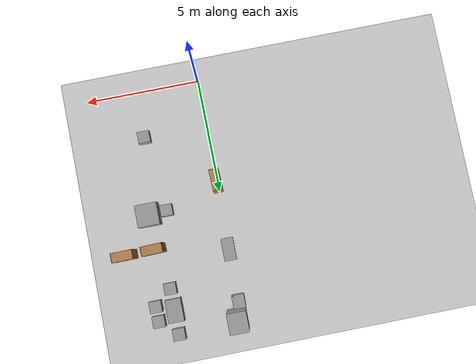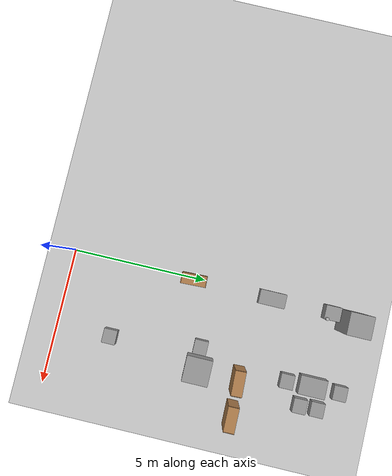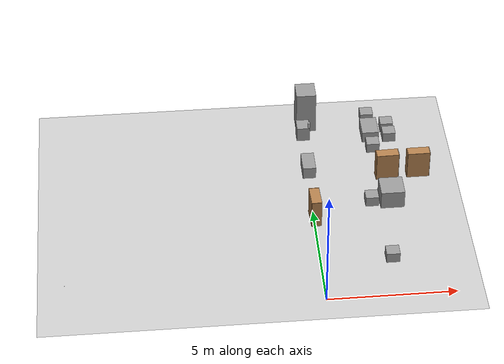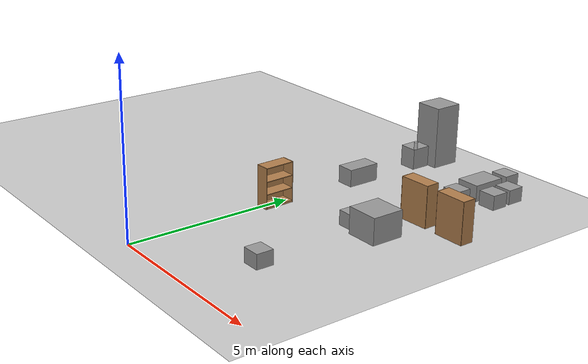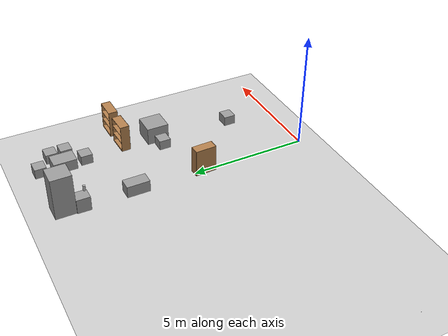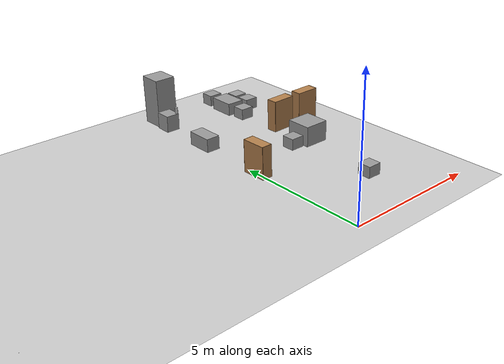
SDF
<sdf version="1.7">
 <world name="default">
  <model name="ground_plane">
   <static>1</static>
   <link name="link">
    <collision name="collision">
     <geometry><plane><normal>0 0 1</normal><size>100 100</size></plane></geometry>
     <surface>
      <contact><collide_bitmask>65535</collide_bitmask></contact>
      <friction><ode><mu>100</mu><mu2>50</mu2></ode></friction>
     </surface>
    </collision>
    <visual name="visual">
     <cast_shadows>0</cast_shadows>
     <geometry><plane><normal>0 0 1</normal><size>100 100</size></plane></geometry>
     <material>
      <script><uri>file://media/materials/scripts/gazebo.material</uri><name>Gazebo/Grey</name></script>
     </material>
    </visual>
   </link>
  </model>
  <model name="bookshelf">
   <static>1</static>
   <link name="link">
    <inertial><mass>1</mass></inertial>
    <collision name="back">
     <pose>0 0.005 0.6 0 -0 0</pose>
     <geometry><box><size>0.9 0.01 1.2</size></box></geometry>
    </collision>
    <visual name="visual1">
     <pose>0 0.005 0.6 0 -0 0</pose>
     <geometry><box><size>0.9 0.01 1.2</size></box></geometry>
     <material>
      <script><uri>file://media/materials/scripts/gazebo.material</uri><name>Gazebo/Wood</name></script>
     </material>
    </visual>
    <collision name="left_side">
     <pose>0.45 -0.195 0.6 0 -0 0</pose>
     <geometry><box><size>0.02 0.4 1.2</size></box></geometry>
    </collision>
    <visual name="visual2">
     <pose>0.45 -0.195 0.6 0 -0 0</pose>
     <geometry><box><size>0.02 0.4 1.2</size></box></geometry>
     <material>
      <script><uri>file://media/materials/scripts/gazebo.material</uri><name>Gazebo/Wood</name></script>
     </material>
    </visual>
    <collision name="right_side">
     <pose>-0.45 -0.195 0.6 0 -0 0</pose>
     <geometry><box><size>0.02 0.4 1.2</size></box></geometry>
    </collision>
    <visual name="visual3">
     <pose>-0.45 -0.195 0.6 0 -0 0</pose>
     <geometry><box><size>0.02 0.4 1.2</size></box></geometry>
     <material>
      <script><uri>file://media/materials/scripts/gazebo.material</uri><name>Gazebo/Wood</name></script>
     </material>
    </visual>
    <collision name="bottom">
     <pose>0 -0.195 0.03 0 -0 0</pose>
     <geometry><box><size>0.88 0.4 0.06</size></box></geometry>
    </collision>
    <visual name="visual4">
     <pose>0 -0.195 0.03 0 -0 0</pose>
     <geometry><box><size>0.88 0.4 0.06</size></box></geometry>
     <material>
      <script><uri>file://media/materials/scripts/gazebo.material</uri><name>Gazebo/Wood</name></script>
     </material>
    </visual>
    <collision name="top">
     <pose>0 -0.195 1.19 0 -0 0</pose>
     <geometry><box><size>0.88 0.4 0.02</size></box></geometry>
    </collision>
    <visual name="visual5">
     <pose>0 -0.195 1.19 0 -0 0</pose>
     <geometry><box><size>0.88 0.4 0.02</size></box></geometry>
     <material>
      <script><uri>file://media/materials/scripts/gazebo.material</uri><name>Gazebo/Wood</name></script>
     </material>
    </visual>
    <collision name="low_shelf">
     <pose>0 -0.195 0.43 0 -0 0</pose>
     <geometry><box><size>0.88 0.4 0.02</size></box></geometry>
    </collision>
    <visual name="visual6">
     <pose>0 -0.195 0.43 0 -0 0</pose>
     <geometry><box><size>0.88 0.4 0.02</size></box></geometry>
     <material>
      <script><uri>file://media/materials/scripts/gazebo.material</uri><name>Gazebo/Wood</name></script>
     </material>
    </visual>
    <collision name="high_shelf">
     <pose>0 -0.195 0.8 0 -0 0</pose>
     <geometry><box><size>0.88 0.4 0.02</size></box></geometry>
    </collision>
    <visual name="visual7">
     <pose>0 -0.195 0.8 0 -0 0</pose>
     <geometry><box><size>0.88 0.4 0.02</size></box></geometry>
     <material>
      <script><uri>file://media/materials/scripts/gazebo.material</uri><name>Gazebo/Wood</name></script>
     </material>
    </visual>
   </link>
   <pose>-0.149519 4.58526 0.003354 0 -0 1.60289</pose>
  </model>
  <model name="bookshelf_clone">
   <static>1</static>
   <link name="link">
    <inertial><mass>1</mass></inertial>
    <collision name="back">
     <pose>0 0.005 0.6 0 -0 0</pose>
     <geometry><box><size>0.9 0.01 1.2</size></box></geometry>
    </collision>
    <visual name="visual1">
     <pose>0 0.005 0.6 0 -0 0</pose>
     <geometry><box><size>0.9 0.01 1.2</size></box></geometry>
     <material>
      <script><uri>file://media/materials/scripts/gazebo.material</uri><name>Gazebo/Wood</name></script>
     </material>
    </visual>
    <collision name="left_side">
     <pose>0.45 -0.195 0.6 0 -0 0</pose>
     <geometry><box><size>0.02 0.4 1.2</size></box></geometry>
    </collision>
    <visual name="visual2">
     <pose>0.45 -0.195 0.6 0 -0 0</pose>
     <geometry><box><size>0.02 0.4 1.2</size></box></geometry>
     <material>
      <script><uri>file://media/materials/scripts/gazebo.material</uri><name>Gazebo/Wood</name></script>
     </material>
    </visual>
    <collision name="right_side">
     <pose>-0.45 -0.195 0.6 0 -0 0</pose>
     <geometry><box><size>0.02 0.4 1.2</size></box></geometry>
    </collision>
    <visual name="visual3">
     <pose>-0.45 -0.195 0.6 0 -0 0</pose>
     <geometry><box><size>0.02 0.4 1.2</size></box></geometry>
     <material>
      <script><uri>file://media/materials/scripts/gazebo.material</uri><name>Gazebo/Wood</name></script>
     </material>
    </visual>
    <collision name="bottom">
     <pose>0 -0.195 0.03 0 -0 0</pose>
     <geometry><box><size>0.88 0.4 0.06</size></box></geometry>
    </collision>
    <visual name="visual4">
     <pose>0 -0.195 0.03 0 -0 0</pose>
     <geometry><box><size>0.88 0.4 0.06</size></box></geometry>
     <material>
      <script><uri>file://media/materials/scripts/gazebo.material</uri><name>Gazebo/Wood</name></script>
     </material>
    </visual>
    <collision name="top">
     <pose>0 -0.195 1.19 0 -0 0</pose>
     <geometry><box><size>0.88 0.4 0.02</size></box></geometry>
    </collision>
    <visual name="visual5">
     <pose>0 -0.195 1.19 0 -0 0</pose>
     <geometry><box><size>0.88 0.4 0.02</size></box></geometry>
     <material>
      <script><uri>file://media/materials/scripts/gazebo.material</uri><name>Gazebo/Wood</name></script>
     </material>
    </visual>
    <collision name="low_shelf">
     <pose>0 -0.195 0.43 0 -0 0</pose>
     <geometry><box><size>0.88 0.4 0.02</size></box></geometry>
    </collision>
    <visual name="visual6">
     <pose>0 -0.195 0.43 0 -0 0</pose>
     <geometry><box><size>0.88 0.4 0.02</size></box></geometry>
     <material>
      <script><uri>file://media/materials/scripts/gazebo.material</uri><name>Gazebo/Wood</name></script>
     </material>
    </visual>
    <collision name="high_shelf">
     <pose>0 -0.195 0.8 0 -0 0</pose>
     <geometry><box><size>0.88 0.4 0.02</size></box></geometry>
    </collision>
    <visual name="visual7">
     <pose>0 -0.195 0.8 0 -0 0</pose>
     <geometry><box><size>0.88 0.4 0.02</size></box></geometry>
     <material>
      <script><uri>file://media/materials/scripts/gazebo.material</uri><name>Gazebo/Wood</name></script>
     </material>
    </visual>
   </link>
   <pose>3.21772 6.7548 0.007597 0 0 -3.10805</pose>
  </model>
  <model name="bookshelf_clone_0">
   <static>1</static>
   <link name="link">
    <inertial><mass>1</mass></inertial>
    <collision name="back">
     <pose>0 0.005 0.6 0 -0 0</pose>
     <geometry><box><size>0.9 0.01 1.2</size></box></geometry>
    </collision>
    <visual name="visual1">
     <pose>0 0.005 0.6 0 -0 0</pose>
     <geometry><box><size>0.9 0.01 1.2</size></box></geometry>
     <material>
      <script><uri>file://media/materials/scripts/gazebo.material</uri><name>Gazebo/Wood</name></script>
     </material>
    </visual>
    <collision name="left_side">
     <pose>0.45 -0.195 0.6 0 -0 0</pose>
     <geometry><box><size>0.02 0.4 1.2</size></box></geometry>
    </collision>
    <visual name="visual2">
     <pose>0.45 -0.195 0.6 0 -0 0</pose>
     <geometry><box><size>0.02 0.4 1.2</size></box></geometry>
     <material>
      <script><uri>file://media/materials/scripts/gazebo.material</uri><name>Gazebo/Wood</name></script>
     </material>
    </visual>
    <collision name="right_side">
     <pose>-0.45 -0.195 0.6 0 -0 0</pose>
     <geometry><box><size>0.02 0.4 1.2</size></box></geometry>
    </collision>
    <visual name="visual3">
     <pose>-0.45 -0.195 0.6 0 -0 0</pose>
     <geometry><box><size>0.02 0.4 1.2</size></box></geometry>
     <material>
      <script><uri>file://media/materials/scripts/gazebo.material</uri><name>Gazebo/Wood</name></script>
     </material>
    </visual>
    <collision name="bottom">
     <pose>0 -0.195 0.03 0 -0 0</pose>
     <geometry><box><size>0.88 0.4 0.06</size></box></geometry>
    </collision>
    <visual name="visual4">
     <pose>0 -0.195 0.03 0 -0 0</pose>
     <geometry><box><size>0.88 0.4 0.06</size></box></geometry>
     <material>
      <script><uri>file://media/materials/scripts/gazebo.material</uri><name>Gazebo/Wood</name></script>
     </material>
    </visual>
    <collision name="top">
     <pose>0 -0.195 1.19 0 -0 0</pose>
     <geometry><box><size>0.88 0.4 0.02</size></box></geometry>
    </collision>
    <visual name="visual5">
     <pose>0 -0.195 1.19 0 -0 0</pose>
     <geometry><box><size>0.88 0.4 0.02</size></box></geometry>
     <material>
      <script><uri>file://media/materials/scripts/gazebo.material</uri><name>Gazebo/Wood</name></script>
     </material>
    </visual>
    <collision name="low_shelf">
     <pose>0 -0.195 0.43 0 -0 0</pose>
     <geometry><box><size>0.88 0.4 0.02</size></box></geometry>
    </collision>
    <visual name="visual6">
     <pose>0 -0.195 0.43 0 -0 0</pose>
     <geometry><box><size>0.88 0.4 0.02</size></box></geometry>
     <material>
      <script><uri>file://media/materials/scripts/gazebo.material</uri><name>Gazebo/Wood</name></script>
     </material>
    </visual>
    <collision name="high_shelf">
     <pose>0 -0.195 0.8 0 -0 0</pose>
     <geometry><box><size>0.88 0.4 0.02</size></box></geometry>
    </collision>
    <visual name="visual7">
     <pose>0 -0.195 0.8 0 -0 0</pose>
     <geometry><box><size>0.88 0.4 0.02</size></box></geometry>
     <material>
      <script><uri>file://media/materials/scripts/gazebo.material</uri><name>Gazebo/Wood</name></script>
     </material>
    </visual>
   </link>
   <pose>4.47579 6.78864 -0.002803 -0.005198 -0.000171 -3.13529</pose>
  </model>
  <model name="unit_box_clone_0">
   <link name="link">
    <inertial>
     <mass>1</mass>
     <inertia>
      <ixx>0.166667</ixx>
      <ixy>0</ixy>
      <ixz>0</ixz>
      <iyy>0.166667</iyy>
      <iyz>0</iyz>
      <izz>0.166667</izz>
     </inertia>
    </inertial>
    <visual name="visual">
     <geometry><box><size>0.525272 0.502179 0.423961</size></box></geometry>
     <material>
      <script><name>Gazebo/Grey</name><uri>file://media/materials/scripts/gazebo.material</uri></script>
      <shader type="pixel"><normal_map>__default__</normal_map></shader>
      <ambient>0.933 0.933 0.925 1</ambient>
      <diffuse>0.7 0.7 0.7 1</diffuse>
      <specular>0.01 0.01 0.01 1</specular>
      <emissive>0 0 0 1</emissive>
     </material>
    </visual>
    <collision name="collision">
     <geometry><box><size>0.525272 0.502179 0.423961</size></box></geometry>
     <surface>
      <friction>
       <ode><mu>1</mu><mu2>1</mu2><fdir1>0 0 0</fdir1><slip1>0</slip1><slip2>0</slip2></ode>
       <torsional>
        <coefficient>1</coefficient>
        <patch_radius>0</patch_radius>
        <surface_radius>0</surface_radius>
        <use_patch_radius>1</use_patch_radius>
        <ode><slip>0</slip></ode>
       </torsional>
      </friction>
      <bounce><restitution_coefficient>0</restitution_coefficient><threshold>1e+06</threshold></bounce>
      <contact>
       <collide_without_contact>0</collide_without_contact>
       <collide_without_contact_bitmask>1</collide_without_contact_bitmask>
       <collide_bitmask>1</collide_bitmask>
       <ode>
        <soft_cfm>0</soft_cfm>
        <soft_erp>0.2</soft_erp>
        <kp>1e+13</kp>
        <kd>1</kd>
        <max_vel>0.01</max_vel>
        <min_depth>0</min_depth>
       </ode>
       <bullet>
        <split_impulse>1</split_impulse>
        <split_impulse_penetration_threshold>-0.01</split_impulse_penetration_threshold>
        <soft_cfm>0</soft_cfm>
        <soft_erp>0.2</soft_erp>
        <kp>1e+13</kp>
        <kd>1</kd>
       </bullet>
      </contact>
     </surface>
    </collision>
   </link>
   <static>0</static>
   <pose>2.77764 2.06187 0.21198 0 0 -2.3e-05</pose>
  </model>
  <model name="unit_box_clone_clone">
   <link name="link">
    <inertial>
     <mass>1</mass>
     <inertia>
      <ixx>0.166667</ixx>
      <ixy>0</ixy>
      <ixz>0</ixz>
      <iyy>0.166667</iyy>
      <iyz>0</iyz>
      <izz>0.166667</izz>
     </inertia>
    </inertial>
    <visual name="visual">
     <geometry><box><size>0.808451 0.858287 1.84502</size></box></geometry>
     <material>
      <script><name>Gazebo/Grey</name><uri>file://media/materials/scripts/gazebo.material</uri></script>
      <shader type="pixel"><normal_map>__default__</normal_map></shader>
      <ambient>0.933 0.933 0.925 1</ambient>
      <diffuse>0.7 0.7 0.7 1</diffuse>
      <specular>0.01 0.01 0.01 1</specular>
      <emissive>0 0 0 1</emissive>
     </material>
    </visual>
    <collision name="collision">
     <geometry><box><size>0.808451 0.858287 1.84502</size></box></geometry>
     <surface>
      <friction>
       <ode><mu>1</mu><mu2>1</mu2><fdir1>0 0 0</fdir1><slip1>0</slip1><slip2>0</slip2></ode>
       <torsional>
        <coefficient>1</coefficient>
        <patch_radius>0</patch_radius>
        <surface_radius>0</surface_radius>
        <use_patch_radius>1</use_patch_radius>
        <ode><slip>0</slip></ode>
       </torsional>
      </friction>
      <bounce><restitution_coefficient>0</restitution_coefficient><threshold>1e+06</threshold></bounce>
      <contact>
       <collide_without_contact>0</collide_without_contact>
       <collide_without_contact_bitmask>1</collide_without_contact_bitmask>
       <collide_bitmask>1</collide_bitmask>
       <ode>
        <soft_cfm>0</soft_cfm>
        <soft_erp>0.2</soft_erp>
        <kp>1e+13</kp>
        <kd>1</kd>
        <max_vel>0.01</max_vel>
        <min_depth>0</min_depth>
       </ode>
       <bullet>
        <split_impulse>1</split_impulse>
        <split_impulse_penetration_threshold>-0.01</split_impulse_penetration_threshold>
        <soft_cfm>0</soft_cfm>
        <soft_erp>0.2</soft_erp>
        <kp>1e+13</kp>
        <kd>1</kd>
       </bullet>
      </contact>
     </surface>
    </collision>
   </link>
   <static>0</static>
   <pose>0.248065 10.5246 0.92251 0 0 -0.001486</pose>
  </model>
  <model name="unit_box_clone_clone_0">
   <link name="link">
    <inertial>
     <mass>1</mass>
     <inertia>
      <ixx>0.166667</ixx>
      <ixy>0</ixy>
      <ixz>0</ixz>
      <iyy>0.166667</iyy>
      <iyz>0</iyz>
      <izz>0.166667</izz>
     </inertia>
    </inertial>
    <visual name="visual">
     <geometry><box><size>0.525272 0.583453 0.630859</size></box></geometry>
     <material>
      <script><name>Gazebo/Grey</name><uri>file://media/materials/scripts/gazebo.material</uri></script>
      <shader type="pixel"><normal_map>__default__</normal_map></shader>
      <ambient>0.933 0.933 0.925 1</ambient>
      <diffuse>0.7 0.7 0.7 1</diffuse>
      <specular>0.01 0.01 0.01 1</specular>
      <emissive>0 0 0 1</emissive>
     </material>
    </visual>
    <collision name="collision">
     <geometry><box><size>0.525272 0.583453 0.630859</size></box></geometry>
     <surface>
      <friction>
       <ode><mu>1</mu><mu2>1</mu2><fdir1>0 0 0</fdir1><slip1>0</slip1><slip2>0</slip2></ode>
       <torsional>
        <coefficient>1</coefficient>
        <patch_radius>0</patch_radius>
        <surface_radius>0</surface_radius>
        <use_patch_radius>1</use_patch_radius>
        <ode><slip>0</slip></ode>
       </torsional>
      </friction>
      <bounce><restitution_coefficient>0</restitution_coefficient><threshold>1e+06</threshold></bounce>
      <contact>
       <collide_without_contact>0</collide_without_contact>
       <collide_without_contact_bitmask>1</collide_without_contact_bitmask>
       <collide_bitmask>1</collide_bitmask>
       <ode>
        <soft_cfm>0</soft_cfm>
        <soft_erp>0.2</soft_erp>
        <kp>1e+13</kp>
        <kd>1</kd>
        <max_vel>0.01</max_vel>
        <min_depth>0</min_depth>
       </ode>
       <bullet>
        <split_impulse>1</split_impulse>
        <split_impulse_penetration_threshold>-0.01</split_impulse_penetration_threshold>
        <soft_cfm>0</soft_cfm>
        <soft_erp>0.2</soft_erp>
        <kp>1e+13</kp>
        <kd>1</kd>
       </bullet>
      </contact>
     </surface>
    </collision>
   </link>
   <static>0</static>
   <pose>0.078842 9.80259 0.296536 0.011877 0.013252 -0.000358</pose>
  </model>
  <model name="unit_box_clone_clone_1">
   <link name="link">
    <inertial>
     <mass>1</mass>
     <inertia>
      <ixx>0.166667</ixx>
      <ixy>0</ixy>
      <ixz>0</ixz>
      <iyy>0.166667</iyy>
      <iyz>0</iyz>
      <izz>0.166667</izz>
     </inertia>
    </inertial>
    <visual name="visual">
     <geometry><box><size>0.525272 0.97954 0.509969</size></box></geometry>
     <material>
      <script><name>Gazebo/Grey</name><uri>file://media/materials/scripts/gazebo.material</uri></script>
      <shader type="pixel"><normal_map>__default__</normal_map></shader>
      <ambient>0.933 0.933 0.925 1</ambient>
      <diffuse>0.7 0.7 0.7 1</diffuse>
      <specular>0.01 0.01 0.01 1</specular>
      <emissive>0 0 0 1</emissive>
     </material>
    </visual>
    <collision name="collision">
     <geometry><box><size>0.525272 0.97954 0.509969</size></box></geometry>
     <surface>
      <friction>
       <ode><mu>1</mu><mu2>1</mu2><fdir1>0 0 0</fdir1><slip1>0</slip1><slip2>0</slip2></ode>
       <torsional>
        <coefficient>1</coefficient>
        <patch_radius>0</patch_radius>
        <surface_radius>0</surface_radius>
        <use_patch_radius>1</use_patch_radius>
        <ode><slip>0</slip></ode>
       </torsional>
      </friction>
      <bounce><restitution_coefficient>0</restitution_coefficient><threshold>1e+06</threshold></bounce>
      <contact>
       <collide_without_contact>0</collide_without_contact>
       <collide_without_contact_bitmask>1</collide_without_contact_bitmask>
       <collide_bitmask>1</collide_bitmask>
       <ode>
        <soft_cfm>0</soft_cfm>
        <soft_erp>0.2</soft_erp>
        <kp>1e+13</kp>
        <kd>1</kd>
        <max_vel>0.01</max_vel>
        <min_depth>0</min_depth>
       </ode>
       <bullet>
        <split_impulse>1</split_impulse>
        <split_impulse_penetration_threshold>-0.01</split_impulse_penetration_threshold>
        <soft_cfm>0</soft_cfm>
        <soft_erp>0.2</soft_erp>
        <kp>1e+13</kp>
        <kd>1</kd>
       </bullet>
      </contact>
     </surface>
    </collision>
   </link>
   <static>0</static>
   <pose>0.078868 7.55518 0.254985 -4e-06 1e-06 -3e-06</pose>
  </model>
  <model name="unit_box_clone_clone_8">
   <link name="link">
    <inertial>
     <mass>1</mass>
     <inertia>
      <ixx>0.166667</ixx>
      <ixy>0</ixy>
      <ixz>0</ixz>
      <iyy>0.166667</iyy>
      <iyz>0</iyz>
      <izz>0.166667</izz>
     </inertia>
    </inertial>
    <visual name="visual">
     <geometry><box><size>0.525272 0.502179 0.423961</size></box></geometry>
     <material>
      <script><name>Gazebo/Grey</name><uri>file://media/materials/scripts/gazebo.material</uri></script>
      <shader type="pixel"><normal_map>__default__</normal_map></shader>
      <ambient>0.933 0.933 0.925 1</ambient>
      <diffuse>0.7 0.7 0.7 1</diffuse>
      <specular>0.01 0.01 0.01 1</specular>
      <emissive>0 0 0 1</emissive>
     </material>
    </visual>
    <collision name="collision">
     <geometry><box><size>0.525272 0.502179 0.423961</size></box></geometry>
     <surface>
      <friction>
       <ode><mu>1</mu><mu2>1</mu2><fdir1>0 0 0</fdir1><slip1>0</slip1><slip2>0</slip2></ode>
       <torsional>
        <coefficient>1</coefficient>
        <patch_radius>0</patch_radius>
        <surface_radius>0</surface_radius>
        <use_patch_radius>1</use_patch_radius>
        <ode><slip>0</slip></ode>
       </torsional>
      </friction>
      <bounce><restitution_coefficient>0</restitution_coefficient><threshold>1e+06</threshold></bounce>
      <contact>
       <collide_without_contact>0</collide_without_contact>
       <collide_without_contact_bitmask>1</collide_without_contact_bitmask>
       <collide_bitmask>1</collide_bitmask>
       <ode>
        <soft_cfm>0</soft_cfm>
        <soft_erp>0.2</soft_erp>
        <kp>1e+13</kp>
        <kd>1</kd>
        <max_vel>0.01</max_vel>
        <min_depth>0</min_depth>
       </ode>
       <bullet>
        <split_impulse>1</split_impulse>
        <split_impulse_penetration_threshold>-0.01</split_impulse_penetration_threshold>
        <soft_cfm>0</soft_cfm>
        <soft_erp>0.2</soft_erp>
        <kp>1e+13</kp>
        <kd>1</kd>
       </bullet>
      </contact>
     </surface>
    </collision>
   </link>
   <static>0</static>
   <pose>2.39961 5.38819 0.21198 0 0 -6e-06</pose>
  </model>
  <model name="unit_box_clone_clone_1_clone">
   <link name="link">
    <inertial>
     <mass>1</mass>
     <inertia>
      <ixx>0.166667</ixx>
      <ixy>0</ixy>
      <ixz>0</ixz>
      <iyy>0.166667</iyy>
      <iyz>0</iyz>
      <izz>0.166667</izz>
     </inertia>
    </inertial>
    <visual name="visual">
     <geometry><box><size>0.682472 0.993503 0.47723</size></box></geometry>
     <material>
      <script><name>Gazebo/Grey</name><uri>file://media/materials/scripts/gazebo.material</uri></script>
      <shader type="pixel"><normal_map>__default__</normal_map></shader>
      <ambient>0.933 0.933 0.925 1</ambient>
      <diffuse>0.7 0.7 0.7 1</diffuse>
      <specular>0.01 0.01 0.01 1</specular>
      <emissive>0 0 0 1</emissive>
     </material>
    </visual>
    <collision name="collision">
     <geometry><box><size>0.682472 0.993503 0.47723</size></box></geometry>
     <surface>
      <friction>
       <ode><mu>1</mu><mu2>1</mu2><fdir1>0 0 0</fdir1><slip1>0</slip1><slip2>0</slip2></ode>
       <torsional>
        <coefficient>1</coefficient>
        <patch_radius>0</patch_radius>
        <surface_radius>0</surface_radius>
        <use_patch_radius>1</use_patch_radius>
        <ode><slip>0</slip></ode>
       </torsional>
      </friction>
      <bounce><restitution_coefficient>0</restitution_coefficient><threshold>1e+06</threshold></bounce>
      <contact>
       <collide_without_contact>0</collide_without_contact>
       <collide_without_contact_bitmask>1</collide_without_contact_bitmask>
       <collide_bitmask>1</collide_bitmask>
       <ode>
        <soft_cfm>0</soft_cfm>
        <soft_erp>0.2</soft_erp>
        <kp>1e+13</kp>
        <kd>1</kd>
        <max_vel>0.01</max_vel>
        <min_depth>0</min_depth>
       </ode>
       <bullet>
        <split_impulse>1</split_impulse>
        <split_impulse_penetration_threshold>-0.01</split_impulse_penetration_threshold>
        <soft_cfm>0</soft_cfm>
        <soft_erp>0.2</soft_erp>
        <kp>1e+13</kp>
        <kd>1</kd>
       </bullet>
      </contact>
     </surface>
    </collision>
   </link>
   <static>0</static>
   <pose>2.83779 9.67014 0.238615 0 -0 1.8e-05</pose>
  </model>
  <model name="unit_box_clone_clone_5">
   <link name="link">
    <inertial>
     <mass>1</mass>
     <inertia>
      <ixx>0.166667</ixx>
      <ixy>0</ixy>
      <ixz>0</ixz>
      <iyy>0.166667</iyy>
      <iyz>0</iyz>
      <izz>0.166667</izz>
     </inertia>
    </inertial>
    <visual name="visual">
     <geometry><box><size>0.525272 0.502179 0.423961</size></box></geometry>
     <material>
      <script><name>Gazebo/Grey</name><uri>file://media/materials/scripts/gazebo.material</uri></script>
      <shader type="pixel"><normal_map>__default__</normal_map></shader>
      <ambient>0.933 0.933 0.925 1</ambient>
      <diffuse>0.7 0.7 0.7 1</diffuse>
      <specular>0.01 0.01 0.01 1</specular>
      <emissive>0 0 0 1</emissive>
     </material>
    </visual>
    <collision name="collision">
     <geometry><box><size>0.525272 0.502179 0.423961</size></box></geometry>
     <surface>
      <friction>
       <ode><mu>1</mu><mu2>1</mu2><fdir1>0 0 0</fdir1><slip1>0</slip1><slip2>0</slip2></ode>
       <torsional>
        <coefficient>1</coefficient>
        <patch_radius>0</patch_radius>
        <surface_radius>0</surface_radius>
        <use_patch_radius>1</use_patch_radius>
        <ode><slip>0</slip></ode>
       </torsional>
      </friction>
      <bounce><restitution_coefficient>0</restitution_coefficient><threshold>1e+06</threshold></bounce>
      <contact>
       <collide_without_contact>0</collide_without_contact>
       <collide_without_contact_bitmask>1</collide_without_contact_bitmask>
       <collide_bitmask>1</collide_bitmask>
       <ode>
        <soft_cfm>0</soft_cfm>
        <soft_erp>0.2</soft_erp>
        <kp>1e+13</kp>
        <kd>1</kd>
        <max_vel>0.01</max_vel>
        <min_depth>0</min_depth>
       </ode>
       <bullet>
        <split_impulse>1</split_impulse>
        <split_impulse_penetration_threshold>-0.01</split_impulse_penetration_threshold>
        <soft_cfm>0</soft_cfm>
        <soft_erp>0.2</soft_erp>
        <kp>1e+13</kp>
        <kd>1</kd>
       </bullet>
      </contact>
     </surface>
    </collision>
   </link>
   <static>0</static>
   <pose>2.84093 10.6917 0.21198 0 0 -6e-06</pose>
  </model>
  <model name="unit_box_clone_clone_9">
   <link name="link">
    <inertial>
     <mass>1</mass>
     <inertia>
      <ixx>0.166667</ixx>
      <ixy>0</ixy>
      <ixz>0</ixz>
      <iyy>0.166667</iyy>
      <iyz>0</iyz>
      <izz>0.166667</izz>
     </inertia>
    </inertial>
    <visual name="visual">
     <geometry><box><size>0.525272 0.502179 0.423961</size></box></geometry>
     <material>
      <script><name>Gazebo/Grey</name><uri>file://media/materials/scripts/gazebo.material</uri></script>
      <shader type="pixel"><normal_map>__default__</normal_map></shader>
      <ambient>0.933 0.933 0.925 1</ambient>
      <diffuse>0.7 0.7 0.7 1</diffuse>
      <specular>0.01 0.01 0.01 1</specular>
      <emissive>0 0 0 1</emissive>
     </material>
    </visual>
    <collision name="collision">
     <geometry><box><size>0.525272 0.502179 0.423961</size></box></geometry>
     <surface>
      <friction>
       <ode><mu>1</mu><mu2>1</mu2><fdir1>0 0 0</fdir1><slip1>0</slip1><slip2>0</slip2></ode>
       <torsional>
        <coefficient>1</coefficient>
        <patch_radius>0</patch_radius>
        <surface_radius>0</surface_radius>
        <use_patch_radius>1</use_patch_radius>
        <ode><slip>0</slip></ode>
       </torsional>
      </friction>
      <bounce><restitution_coefficient>0</restitution_coefficient><threshold>1e+06</threshold></bounce>
      <contact>
       <collide_without_contact>0</collide_without_contact>
       <collide_without_contact_bitmask>1</collide_without_contact_bitmask>
       <collide_bitmask>1</collide_bitmask>
       <ode>
        <soft_cfm>0</soft_cfm>
        <soft_erp>0.2</soft_erp>
        <kp>1e+13</kp>
        <kd>1</kd>
        <max_vel>0.01</max_vel>
        <min_depth>0</min_depth>
       </ode>
       <bullet>
        <split_impulse>1</split_impulse>
        <split_impulse_penetration_threshold>-0.01</split_impulse_penetration_threshold>
        <soft_cfm>0</soft_cfm>
        <soft_erp>0.2</soft_erp>
        <kp>1e+13</kp>
        <kd>1</kd>
       </bullet>
      </contact>
     </surface>
    </collision>
   </link>
   <static>0</static>
   <pose>3.5915 10.0055 0.21198 0 0 -6e-06</pose>
  </model>
  <model name="unit_box_clone_clone_10">
   <link name="link">
    <inertial>
     <mass>1</mass>
     <inertia>
      <ixx>0.166667</ixx>
      <ixy>0</ixy>
      <ixz>0</ixz>
      <iyy>0.166667</iyy>
      <iyz>0</iyz>
      <izz>0.166667</izz>
     </inertia>
    </inertial>
    <visual name="visual">
     <geometry><box><size>0.525272 0.502179 0.423961</size></box></geometry>
     <material>
      <script><name>Gazebo/Grey</name><uri>file://media/materials/scripts/gazebo.material</uri></script>
      <shader type="pixel"><normal_map>__default__</normal_map></shader>
      <ambient>0.933 0.933 0.925 1</ambient>
      <diffuse>0.7 0.7 0.7 1</diffuse>
      <specular>0.01 0.01 0.01 1</specular>
      <emissive>0 0 0 1</emissive>
     </material>
    </visual>
    <collision name="collision">
     <geometry><box><size>0.525272 0.502179 0.423961</size></box></geometry>
     <surface>
      <friction>
       <ode><mu>1</mu><mu2>1</mu2><fdir1>0 0 0</fdir1><slip1>0</slip1><slip2>0</slip2></ode>
       <torsional>
        <coefficient>1</coefficient>
        <patch_radius>0</patch_radius>
        <surface_radius>0</surface_radius>
        <use_patch_radius>1</use_patch_radius>
        <ode><slip>0</slip></ode>
       </torsional>
      </friction>
      <bounce><restitution_coefficient>0</restitution_coefficient><threshold>1e+06</threshold></bounce>
      <contact>
       <collide_without_contact>0</collide_without_contact>
       <collide_without_contact_bitmask>1</collide_without_contact_bitmask>
       <collide_bitmask>1</collide_bitmask>
       <ode>
        <soft_cfm>0</soft_cfm>
        <soft_erp>0.2</soft_erp>
        <kp>1e+13</kp>
        <kd>1</kd>
        <max_vel>0.01</max_vel>
        <min_depth>0</min_depth>
       </ode>
       <bullet>
        <split_impulse>1</split_impulse>
        <split_impulse_penetration_threshold>-0.01</split_impulse_penetration_threshold>
        <soft_cfm>0</soft_cfm>
        <soft_erp>0.2</soft_erp>
        <kp>1e+13</kp>
        <kd>1</kd>
       </bullet>
      </contact>
     </surface>
    </collision>
   </link>
   <static>0</static>
   <pose>3.61034 9.36526 0.21198 0 0 -6e-06</pose>
  </model>
  <model name="unit_box_clone_clone_11">
   <link name="link">
    <inertial>
     <mass>1</mass>
     <inertia>
      <ixx>0.166667</ixx>
      <ixy>0</ixy>
      <ixz>0</ixz>
      <iyy>0.166667</iyy>
      <iyz>0</iyz>
      <izz>0.166667</izz>
     </inertia>
    </inertial>
    <visual name="visual">
     <geometry><box><size>0.525272 0.502179 0.423961</size></box></geometry>
     <material>
      <script><name>Gazebo/Grey</name><uri>file://media/materials/scripts/gazebo.material</uri></script>
      <shader type="pixel"><normal_map>__default__</normal_map></shader>
      <ambient>0.933 0.933 0.925 1</ambient>
      <diffuse>0.7 0.7 0.7 1</diffuse>
      <specular>0.01 0.01 0.01 1</specular>
      <emissive>0 0 0 1</emissive>
     </material>
    </visual>
    <collision name="collision">
     <geometry><box><size>0.525272 0.502179 0.423961</size></box></geometry>
     <surface>
      <friction>
       <ode><mu>1</mu><mu2>1</mu2><fdir1>0 0 0</fdir1><slip1>0</slip1><slip2>0</slip2></ode>
       <torsional>
        <coefficient>1</coefficient>
        <patch_radius>0</patch_radius>
        <surface_radius>0</surface_radius>
        <use_patch_radius>1</use_patch_radius>
        <ode><slip>0</slip></ode>
       </torsional>
      </friction>
      <bounce><restitution_coefficient>0</restitution_coefficient><threshold>1e+06</threshold></bounce>
      <contact>
       <collide_without_contact>0</collide_without_contact>
       <collide_without_contact_bitmask>1</collide_without_contact_bitmask>
       <collide_bitmask>1</collide_bitmask>
       <ode>
        <soft_cfm>0</soft_cfm>
        <soft_erp>0.2</soft_erp>
        <kp>1e+13</kp>
        <kd>1</kd>
        <max_vel>0.01</max_vel>
        <min_depth>0</min_depth>
       </ode>
       <bullet>
        <split_impulse>1</split_impulse>
        <split_impulse_penetration_threshold>-0.01</split_impulse_penetration_threshold>
        <soft_cfm>0</soft_cfm>
        <soft_erp>0.2</soft_erp>
        <kp>1e+13</kp>
        <kd>1</kd>
       </bullet>
      </contact>
     </surface>
    </collision>
   </link>
   <static>0</static>
   <pose>2.86041 8.7265 0.21198 0 0 -6e-06</pose>
  </model>
  <model name="unit_box_clone_clone_8_clone">
   <link name="link">
    <inertial>
     <mass>1</mass>
     <inertia>
      <ixx>0.166667</ixx>
      <ixy>0</ixy>
      <ixz>0</ixz>
      <iyy>0.166667</iyy>
      <iyz>0</iyz>
      <izz>0.166667</izz>
     </inertia>
    </inertial>
    <visual name="visual">
     <geometry><box><size>0.943966 0.957675 0.766369</size></box></geometry>
     <material>
      <script><name>Gazebo/Grey</name><uri>file://media/materials/scripts/gazebo.material</uri></script>
      <shader type="pixel"><normal_map>__default__</normal_map></shader>
      <ambient>0.933 0.933 0.925 1</ambient>
      <diffuse>0.7 0.7 0.7 1</diffuse>
      <specular>0.01 0.01 0.01 1</specular>
      <emissive>0 0 0 1</emissive>
     </material>
    </visual>
    <collision name="collision">
     <geometry><box><size>0.943966 0.957675 0.766369</size></box></geometry>
     <surface>
      <friction>
       <ode><mu>1</mu><mu2>1</mu2><fdir1>0 0 0</fdir1><slip1>0</slip1><slip2>0</slip2></ode>
       <torsional>
        <coefficient>1</coefficient>
        <patch_radius>0</patch_radius>
        <surface_radius>0</surface_radius>
        <use_patch_radius>1</use_patch_radius>
        <ode><slip>0</slip></ode>
       </torsional>
      </friction>
      <bounce><restitution_coefficient>0</restitution_coefficient><threshold>1e+06</threshold></bounce>
      <contact>
       <collide_without_contact>0</collide_without_contact>
       <collide_without_contact_bitmask>1</collide_without_contact_bitmask>
       <collide_bitmask>1</collide_bitmask>
       <ode>
        <soft_cfm>0</soft_cfm>
        <soft_erp>0.2</soft_erp>
        <kp>1e+13</kp>
        <kd>1</kd>
        <max_vel>0.01</max_vel>
        <min_depth>0</min_depth>
       </ode>
       <bullet>
        <split_impulse>1</split_impulse>
        <split_impulse_penetration_threshold>-0.01</split_impulse_penetration_threshold>
        <soft_cfm>0</soft_cfm>
        <soft_erp>0.2</soft_erp>
        <kp>1e+13</kp>
        <kd>1</kd>
       </bullet>
      </contact>
     </surface>
    </collision>
   </link>
   <static>0</static>
   <pose>3.1938 5.45363 0.383184 -0 -0 -0.000341</pose>
  </model>
  <model name="ball_bearing">
   <link name="link">
    <pose>0 0 0.003 0 -0 0</pose>
    <inertial>
     <mass>0.0011</mass>
     <inertia>
      <ixx>3.96e-09</ixx>
      <ixy>0</ixy>
      <ixz>0</ixz>
      <iyy>3.96e-09</iyy>
      <iyz>0</iyz>
      <izz>3.96e-09</izz>
     </inertia>
    </inertial>
    <collision name="collision">
     <geometry><sphere><radius>0.003</radius></sphere></geometry>
     <surface>
      <contact>
       <poissons_ratio>0.305</poissons_ratio>
       <elastic_modulus>2e+11</elastic_modulus>
       <ode><kp>100000</kp><kd>100</kd><max_vel>100</max_vel><min_depth>0.001</min_depth></ode>
      </contact>
      <friction>
       <torsional>
        <coefficient>1</coefficient>
        <use_patch_radius>0</use_patch_radius>
        <surface_radius>0.01</surface_radius>
       </torsional>
      </friction>
     </surface>
    </collision>
    <visual name="visual">
     <geometry><sphere><radius>0.003</radius></sphere></geometry>
     <material>
      <script><uri>file://media/materials/scripts/gazebo.material</uri><name>Gazebo/Grey</name></script>
     </material>
    </visual>
    <velocity_decay><linear>0</linear><angular>0.005</angular></velocity_decay>
   </link>
   <pose>-9.84503 1.59407 -0.00066 0 -0 0</pose>
  </model>
  <model name="beer">
   <link name="link">
    <pose>0 0 0.115 0 -0 0</pose>
    <inertial>
     <mass>0.39</mass>
     <inertia><ixx>0.00058</ixx><ixy>0</ixy><ixz>0</ixz><iyy>0.00058</iyy><iyz>0</iyz><izz>0.00019</izz></inertia>
    </inertial>
    <collision name="collision">
     <geometry><cylinder><radius>0.055</radius><length>0.23</length></cylinder></geometry>
    </collision>
    <visual name="visual">
     <geometry><cylinder><radius>0.055</radius><length>0.23</length></cylinder></geometry>
     <material>
      <script>
       <uri>model://beer/materials/scripts</uri>
       <uri>model://beer/materials/textures</uri>
       <name>Beer/Diffuse</name>
      </script>
     </material>
    </visual>
   </link>
   <pose>0.314611 9.59109 0.606378 0.012192 0.013497 0.003927</pose>
  </model>
 </world>
</sdf>
